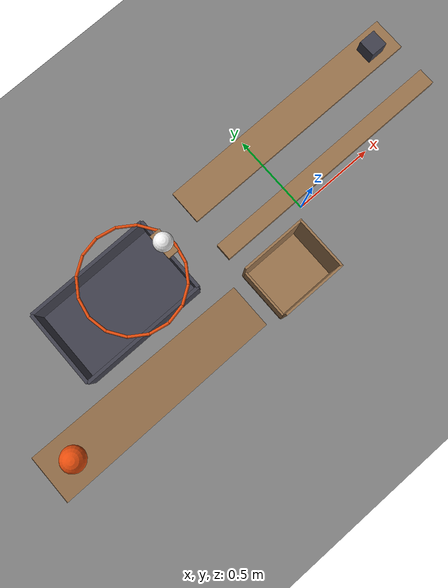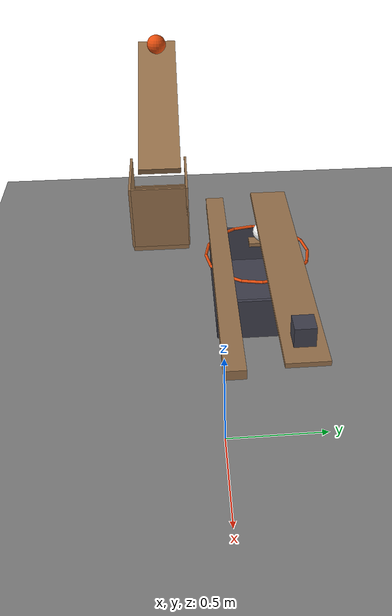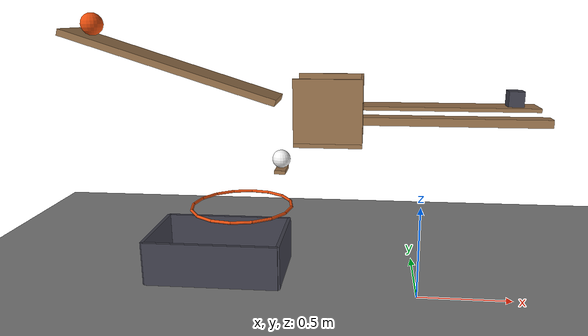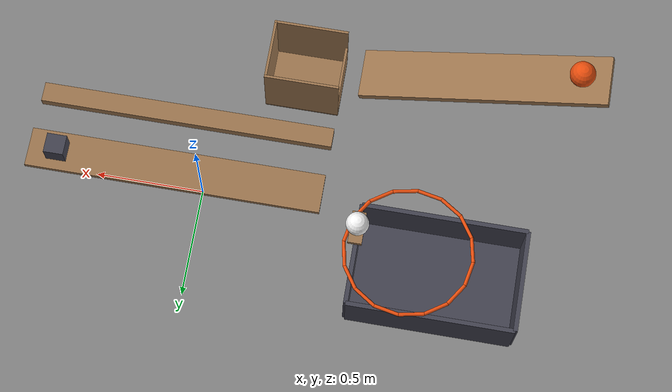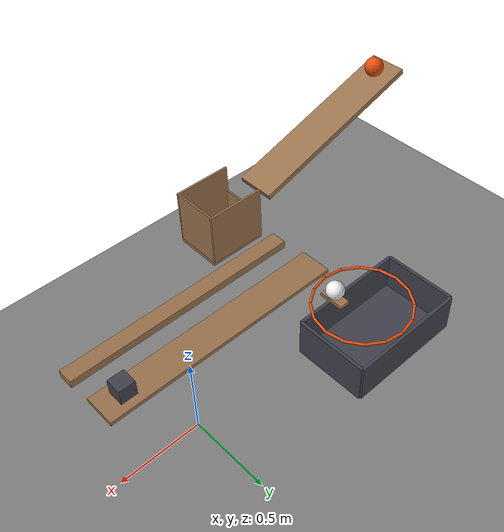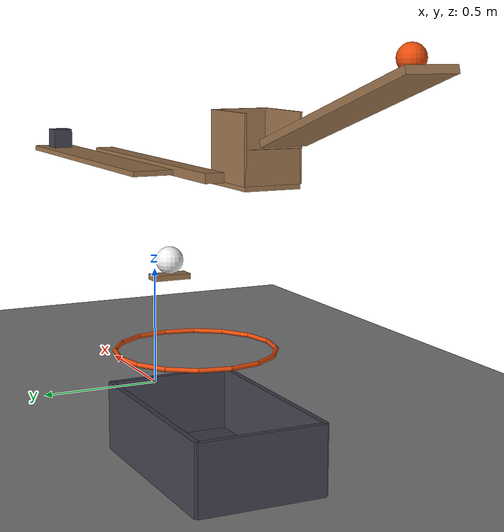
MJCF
<mujoco model="retained_balance_weight_and_hoop_drop">
  <compiler angle="radian"/>
  <option timestep="0.002"/>
  <worldbody>
    <geom name="floor" type="plane" size="6 6 0.1" friction="0.8 0.005 0.002"/>
    <body name="balance" pos="0 0 0.95">
      <joint name="balance_hinge" type="hinge" pos="0 0 0" axis="0 1 0" limited="true" range="-0.436332 0" damping="5" armature="0.02"/>
      <geom name="balance_arm" type="box" pos="0 0 0" size="0.6 0.04 0.02" mass="0.15" friction="0.1 0.002 0.001" solref="0.01 1" rgba="0.6 0.45 0.3 1"/>
      <geom name="balance_runway" type="box" pos="0 0.25 0.03" size="0.6 0.08 0.01" mass="0.06" friction="0.1 0.002 0.001" solref="0.01 1" rgba="0.6 0.45 0.3 1"/>
      <geom name="balance_pocket_base" type="box" pos="-0.45 -0.25 -0.05" size="0.15 0.12 0.01" mass="0.015" friction="0.1 0.002 0.001" solref="0.01 1" rgba="0.6 0.45 0.3 1"/>
      <geom name="balance_pocket_near_wall" type="box" pos="-0.595 -0.25 0.03" size="0.005 0.12 0.07" mass="0.005" friction="0.1 0.002 0.001" solref="0.01 1" rgba="0.6 0.45 0.3 1"/>
      <geom name="balance_pocket_far_wall" type="box" pos="-0.305 -0.25 0.1" size="0.005 0.12 0.14" mass="0.005" friction="0.1 0.002 0.001" solref="0.01 1" rgba="0.6 0.45 0.3 1"/>
      <geom name="balance_pocket_left_wall" type="box" pos="-0.45 -0.13 0.1" size="0.15 0.005 0.14" mass="0.005" friction="0.1 0.002 0.001" solref="0.01 1" rgba="0.6 0.45 0.3 1"/>
      <geom name="balance_pocket_right_wall" type="box" pos="-0.45 -0.37 0.1" size="0.15 0.005 0.14" mass="0.005" friction="0.1 0.002 0.001" solref="0.01 1" rgba="0.6 0.45 0.3 1"/>
    </body>
    <body name="ramp">
      <geom name="ramp" type="box" pos="-1.15697 -0.25 1.23" size="0.5 0.1 0.015" euler="0 0.304693 0" friction="0.5 0.001 0.0002" solref="0.01 1" rgba="0.6 0.45 0.3 1"/>
    </body>
    <body name="ball1" pos="-1.51905 -0.25 1.41201">
      <freejoint/>
      <geom name="ball1" type="sphere" pos="0 0 0" size="0.05" mass="0.8" condim="6" friction="0.5 0.002 0.0005" solref="0.01 1" rgba="0.9 0.3 0.05 1"/>
    </body>
    <body name="block" pos="0.48 0.25 1.03">
      <freejoint/>
      <geom name="block" type="box" pos="0 0 0" size="0.04 0.04 0.04" mass="0.1" friction="0.1 0.001 0.001" solref="0.01 1" rgba="0.25 0.25 0.3 1"/>
    </body>
    <body name="ball2 perch">
      <geom name="ball2 perch" type="box" pos="-0.75 0.25 0.62" size="0.03 0.07 0.01" friction="0.3 0.002 0.001" solref="0.01 1" rgba="0.6 0.45 0.3 1"/>
    </body>
    <body name="ball2" pos="-0.75 0.25 0.68">
      <freejoint/>
      <geom name="ball2" type="sphere" pos="0 0 0" size="0.05" mass="0.12" condim="6" friction="0.35 0.005 0.003" solref="0.01 1" rgba="0.95 0.95 0.95 1"/>
    </body>
    <body name="hoop">
      <geom name="hoop_00" type="capsule" size="0.008" fromto="-0.697 0.25 0.4 -0.718542 0.358299 0.4" rgba="0.9 0.3 0.05 1"/>
      <geom name="hoop_01" type="capsule" size="0.008" fromto="-0.718542 0.358299 0.4 -0.779889 0.450111 0.4" rgba="0.9 0.3 0.05 1"/>
      <geom name="hoop_02" type="capsule" size="0.008" fromto="-0.779889 0.450111 0.4 -0.871701 0.511458 0.4" rgba="0.9 0.3 0.05 1"/>
      <geom name="hoop_03" type="capsule" size="0.008" fromto="-0.871701 0.511458 0.4 -0.98 0.533 0.4" rgba="0.9 0.3 0.05 1"/>
      <geom name="hoop_04" type="capsule" size="0.008" fromto="-0.98 0.533 0.4 -1.0883 0.511458 0.4" rgba="0.9 0.3 0.05 1"/>
      <geom name="hoop_05" type="capsule" size="0.008" fromto="-1.0883 0.511458 0.4 -1.18011 0.450111 0.4" rgba="0.9 0.3 0.05 1"/>
      <geom name="hoop_06" type="capsule" size="0.008" fromto="-1.18011 0.450111 0.4 -1.24146 0.358299 0.4" rgba="0.9 0.3 0.05 1"/>
      <geom name="hoop_07" type="capsule" size="0.008" fromto="-1.24146 0.358299 0.4 -1.263 0.25 0.4" rgba="0.9 0.3 0.05 1"/>
      <geom name="hoop_08" type="capsule" size="0.008" fromto="-1.263 0.25 0.4 -1.24146 0.141701 0.4" rgba="0.9 0.3 0.05 1"/>
      <geom name="hoop_09" type="capsule" size="0.008" fromto="-1.24146 0.141701 0.4 -1.18011 0.0498888 0.4" rgba="0.9 0.3 0.05 1"/>
      <geom name="hoop_10" type="capsule" size="0.008" fromto="-1.18011 0.0498888 0.4 -1.0883 -0.0114579 0.4" rgba="0.9 0.3 0.05 1"/>
      <geom name="hoop_11" type="capsule" size="0.008" fromto="-1.0883 -0.0114579 0.4 -0.98 -0.033 0.4" rgba="0.9 0.3 0.05 1"/>
      <geom name="hoop_12" type="capsule" size="0.008" fromto="-0.98 -0.033 0.4 -0.871701 -0.0114579 0.4" rgba="0.9 0.3 0.05 1"/>
      <geom name="hoop_13" type="capsule" size="0.008" fromto="-0.871701 -0.0114579 0.4 -0.779889 0.0498888 0.4" rgba="0.9 0.3 0.05 1"/>
      <geom name="hoop_14" type="capsule" size="0.008" fromto="-0.779889 0.0498888 0.4 -0.718542 0.141701 0.4" rgba="0.9 0.3 0.05 1"/>
      <geom name="hoop_15" type="capsule" size="0.008" fromto="-0.718542 0.141701 0.4 -0.697 0.25 0.4" rgba="0.9 0.3 0.05 1"/>
    </body>
    <body name="cup">
      <geom name="cup_base" type="box" pos="-1.12 0.25 0.01" size="0.375 0.23 0.01" friction="0.8 0.01 0.01" solref="0.01 1" rgba="0.25 0.25 0.3 1"/>
      <geom name="cup_near_wall" type="box" pos="-1.495 0.25 0.125" size="0.01 0.23 0.125" friction="0.8 0.01 0.01" solref="0.01 1" rgba="0.25 0.25 0.3 1"/>
      <geom name="cup_far_wall" type="box" pos="-0.745 0.25 0.125" size="0.01 0.23 0.125" friction="0.8 0.01 0.01" solref="0.01 1" rgba="0.25 0.25 0.3 1"/>
      <geom name="cup_left_wall" type="box" pos="-1.12 0.48 0.125" size="0.375 0.01 0.125" friction="0.8 0.01 0.01" solref="0.01 1" rgba="0.25 0.25 0.3 1"/>
      <geom name="cup_right_wall" type="box" pos="-1.12 0.02 0.125" size="0.375 0.01 0.125" friction="0.8 0.01 0.01" solref="0.01 1" rgba="0.25 0.25 0.3 1"/>
    </body>
  </worldbody>
  <keyframe>
    <key name="start" qpos="0 -1.51905 -0.25 1.41201 1 0 0 0 0.48 0.25 1.03 1 0 0 0 -0.75 0.25 0.68 1 0 0 0" qvel="0 0 0 0 0 0 0 0 0 0 0 0 0 0 0 0 0 0 0"/>
  </keyframe>
</mujoco>
